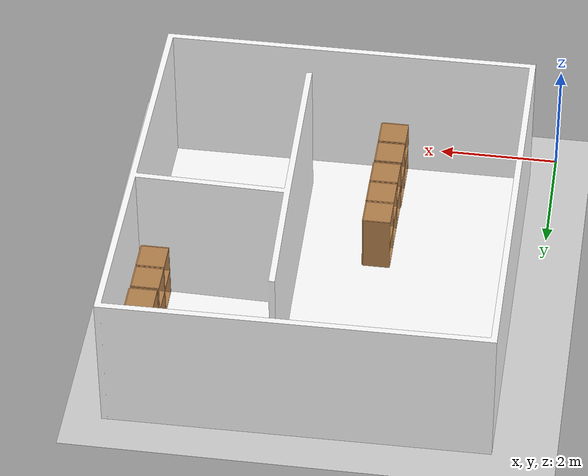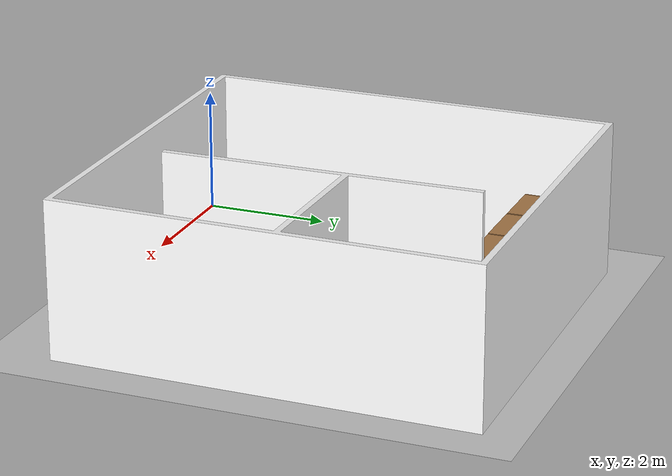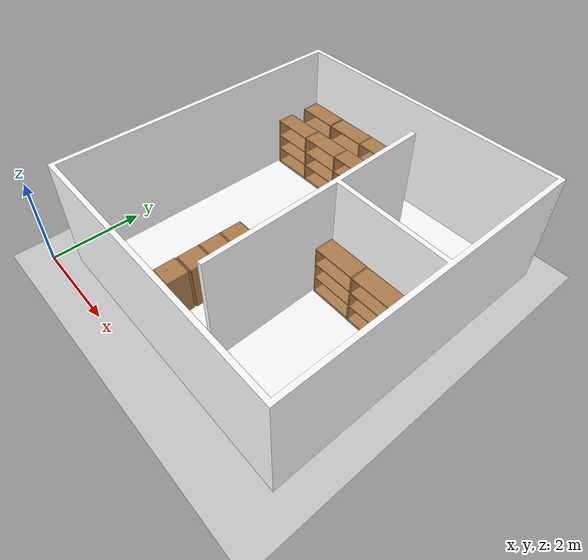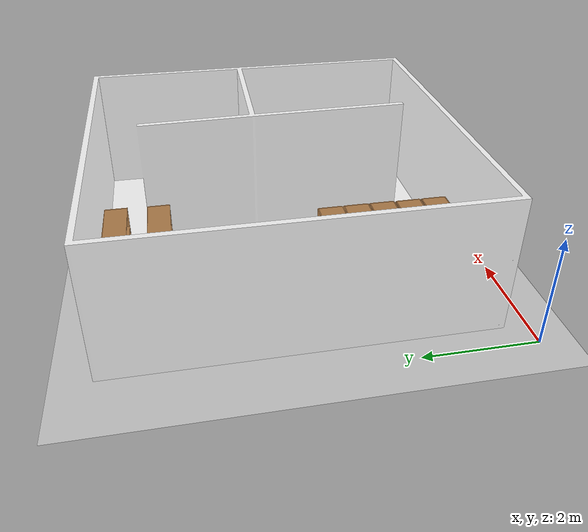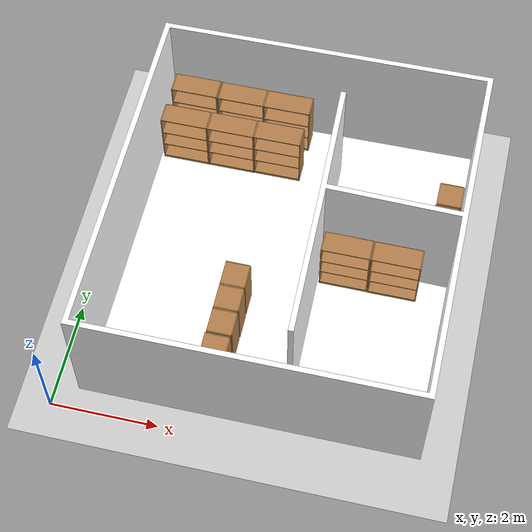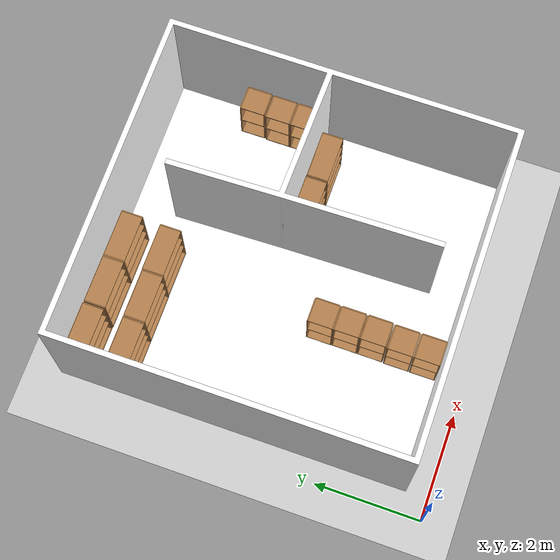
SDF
<sdf version="1.7">
 <world name="default">
  <light name="sun" type="directional">
   <pose>0 0 10 0 -0 0</pose>
   <diffuse>0.8 0.8 0.8 1</diffuse>
   <specular>0.2 0.2 0.2 1</specular>
   <attenuation>
    <range>1000</range>
    <constant>0.9</constant>
    <linear>0.01</linear>
    <quadratic>0.001</quadratic>
   </attenuation>
   <direction>-0.5 0.1 -0.9</direction>
   <spot><inner_angle>0</inner_angle><outer_angle>0</outer_angle><falloff>0</falloff></spot>
  </light>
  <model name="ground_plane">
   <static>1</static>
   <link name="link">
    <collision name="collision">
     <geometry><plane><normal>0 0 1</normal><size>100 100</size></plane></geometry>
     <surface><friction><ode><mu>100</mu><mu2>50</mu2></ode></friction></surface>
    </collision>
    <visual name="visual">
     <cast_shadows>0</cast_shadows>
     <geometry><plane><normal>0 0 1</normal><size>100 100</size></plane></geometry>
     <material>
      <script><uri>file://media/materials/scripts/gazebo.material</uri><name>Gazebo/Grey</name></script>
     </material>
    </visual>
   </link>
  </model>
  <gravity>0 0 -9.8</gravity>
  <magnetic_field>6e-06 2.3e-05 -4.2e-05</magnetic_field>
  <atmosphere type="adiabatic"/>
  <physics type="ode">
   <max_step_size>0.001</max_step_size>
   <real_time_factor>1</real_time_factor>
   <real_time_update_rate>1000</real_time_update_rate>
  </physics>
  <scene><ambient>0.4 0.4 0.4 1</ambient><background>0.7 0.7 0.7 1</background><shadows>1</shadows></scene>
  <audio><device>default</device></audio>
  <spherical_coordinates>
   <surface_model>EARTH_WGS84</surface_model>
   <latitude_deg>0</latitude_deg>
   <longitude_deg>0</longitude_deg>
   <elevation>0</elevation>
   <heading_deg>0</heading_deg>
  </spherical_coordinates>
  <model name="office_L1">
   <static>1</static>
   <link name="floor_1">
    <visual name="visual">
     <geometry><mesh><uri>model://office_L1/meshes/floor_1.obj</uri></mesh></geometry>
     <material>
      <diffuse>1 1 1 1</diffuse>
      <specular>0.1 0.1 0.1 1</specular>
      <pbr>
       <metal><metalness>0.0</metalness><albedo_map>model://office_L1/meshes/blue_linoleum.png</albedo_map></metal>
      </pbr>
      <script><uri>model://office_L1/meshes/</uri><name>floor_1_Diffuse</name></script>
     </material>
    </visual>
    <collision name="collision">
     <geometry><mesh><uri>model://office_L1/meshes/floor_1.obj</uri></mesh></geometry>
     <surface><contact><collide_bitmask>1</collide_bitmask></contact></surface>
    </collision>
   </link>
   <link name="wall_1">
    <visual name="wall_1">
     <geometry><mesh><uri>model://office_L1/meshes/wall_1.obj</uri></mesh></geometry>
     <material>
      <diffuse>1 1 1 1</diffuse>
      <specular>0.1 0.1 0.1 1</specular>
      <pbr>
       <metal><metalness>0.0</metalness><albedo_map>model://office_L1/meshes/default.png</albedo_map></metal>
      </pbr>
      <script><uri>model://office_L1/meshes/</uri><name>wall_1_Diffuse</name></script>
     </material>
    </visual>
    <collision name="collision">
     <geometry><mesh><uri>model://office_L1/meshes/wall_1.obj</uri></mesh></geometry>
     <surface><contact><collide_bitmask>1</collide_bitmask></contact></surface>
    </collision>
    <pose>15.6319 -9.69345 0 0 -0 0</pose>
   </link>
   <pose>-15.2186 10.1056 0 0 -0 0</pose>
  </model>
  <model name="cabinet">
   <static>1</static>
   <link name="cabinet_bottom_plate">
    <inertial>
     <pose>0 0 -1 0 -0 0</pose>
     <inertia><ixx>2.05</ixx><ixy>0</ixy><ixz>0</ixz><iyy>2.05</iyy><iyz>0</iyz><izz>2.05</izz></inertia>
     <mass>25</mass>
    </inertial>
    <collision name="cabinet_bottom_plate_geom">
     <pose>0 0 0.01 0 -0 0</pose>
     <geometry><box><size>0.45 0.45 0.02</size></box></geometry>
    </collision>
    <visual name="cabinet_bottom_plate_geom_visual">
     <pose>0 0 0.01 0 -0 0</pose>
     <geometry><box><size>0.45 0.45 0.02</size></box></geometry>
     <material>
      <script><uri>file://media/materials/scripts/gazebo.material</uri><name>Gazebo/Wood</name></script>
     </material>
    </visual>
    <collision name="cabinet_bottom_plate_geom_cabinet_back_plate">
     <pose>0.235 0 0.51 0 -0 0</pose>
     <geometry><box><size>0.02 0.45 1.02</size></box></geometry>
    </collision>
    <visual name="cabinet_bottom_plate_geom_cabinet_back_plate_visual">
     <pose>0.235 0 0.51 0 -0 0</pose>
     <geometry><box><size>0.02 0.45 1.02</size></box></geometry>
     <material>
      <script><uri>file://media/materials/scripts/gazebo.material</uri><name>Gazebo/Wood</name></script>
     </material>
    </visual>
    <collision name="cabinet_bottom_plate_geom_cabinet_left_plate">
     <pose>0 0.235 0.51 0 -0 0</pose>
     <geometry><box><size>0.45 0.02 1.02</size></box></geometry>
    </collision>
    <visual name="cabinet_bottom_plate_geom_cabinet_left_plate_visual">
     <pose>0 0.235 0.51 0 -0 0</pose>
     <geometry><box><size>0.45 0.02 1.02</size></box></geometry>
     <material>
      <script><uri>file://media/materials/scripts/gazebo.material</uri><name>Gazebo/Wood</name></script>
     </material>
    </visual>
    <collision name="cabinet_bottom_plate_geom_cabinet_middle_plate">
     <pose>0 0 0.51 0 -0 0</pose>
     <geometry><box><size>0.45 0.45 0.02</size></box></geometry>
    </collision>
    <visual name="cabinet_bottom_plate_geom_cabinet_middle_plate_visual">
     <pose>0 0 0.51 0 -0 0</pose>
     <geometry><box><size>0.45 0.45 0.02</size></box></geometry>
     <material>
      <script><uri>file://media/materials/scripts/gazebo.material</uri><name>Gazebo/Wood</name></script>
     </material>
    </visual>
    <collision name="cabinet_bottom_plate_geom_cabinet_right_plate">
     <pose>0 -0.235 0.51 0 -0 0</pose>
     <geometry><box><size>0.45 0.02 1.02</size></box></geometry>
    </collision>
    <visual name="cabinet_bottom_plate_geom_cabinet_right_plate_visual">
     <pose>0 -0.235 0.51 0 -0 0</pose>
     <geometry><box><size>0.45 0.02 1.02</size></box></geometry>
     <material>
      <script><uri>file://media/materials/scripts/gazebo.material</uri><name>Gazebo/Wood</name></script>
     </material>
    </visual>
    <collision name="cabinet_bottom_plate_geom_cabinet_top_plate">
     <pose>0 0 1.01 0 -0 0</pose>
     <geometry><box><size>0.45 0.45 0.02</size></box></geometry>
    </collision>
    <visual name="cabinet_bottom_plate_geom_cabinet_top_plate_visual">
     <pose>0 0 1.01 0 -0 0</pose>
     <geometry><box><size>0.45 0.45 0.02</size></box></geometry>
     <material>
      <script><uri>file://media/materials/scripts/gazebo.material</uri><name>Gazebo/Wood</name></script>
     </material>
    </visual>
   </link>
   <pose>2.75847 2.77242 0 0 -0 0</pose>
  </model>
  <model name="cabinet_0">
   <static>1</static>
   <link name="cabinet_bottom_plate">
    <inertial>
     <pose>0 0 -1 0 -0 0</pose>
     <inertia><ixx>2.05</ixx><ixy>0</ixy><ixz>0</ixz><iyy>2.05</iyy><iyz>0</iyz><izz>2.05</izz></inertia>
     <mass>25</mass>
    </inertial>
    <collision name="cabinet_bottom_plate_geom">
     <pose>0 0 0.01 0 -0 0</pose>
     <geometry><box><size>0.45 0.45 0.02</size></box></geometry>
    </collision>
    <visual name="cabinet_bottom_plate_geom_visual">
     <pose>0 0 0.01 0 -0 0</pose>
     <geometry><box><size>0.45 0.45 0.02</size></box></geometry>
     <material>
      <script><uri>file://media/materials/scripts/gazebo.material</uri><name>Gazebo/Wood</name></script>
     </material>
    </visual>
    <collision name="cabinet_bottom_plate_geom_cabinet_back_plate">
     <pose>0.235 0 0.51 0 -0 0</pose>
     <geometry><box><size>0.02 0.45 1.02</size></box></geometry>
    </collision>
    <visual name="cabinet_bottom_plate_geom_cabinet_back_plate_visual">
     <pose>0.235 0 0.51 0 -0 0</pose>
     <geometry><box><size>0.02 0.45 1.02</size></box></geometry>
     <material>
      <script><uri>file://media/materials/scripts/gazebo.material</uri><name>Gazebo/Wood</name></script>
     </material>
    </visual>
    <collision name="cabinet_bottom_plate_geom_cabinet_left_plate">
     <pose>0 0.235 0.51 0 -0 0</pose>
     <geometry><box><size>0.45 0.02 1.02</size></box></geometry>
    </collision>
    <visual name="cabinet_bottom_plate_geom_cabinet_left_plate_visual">
     <pose>0 0.235 0.51 0 -0 0</pose>
     <geometry><box><size>0.45 0.02 1.02</size></box></geometry>
     <material>
      <script><uri>file://media/materials/scripts/gazebo.material</uri><name>Gazebo/Wood</name></script>
     </material>
    </visual>
    <collision name="cabinet_bottom_plate_geom_cabinet_middle_plate">
     <pose>0 0 0.51 0 -0 0</pose>
     <geometry><box><size>0.45 0.45 0.02</size></box></geometry>
    </collision>
    <visual name="cabinet_bottom_plate_geom_cabinet_middle_plate_visual">
     <pose>0 0 0.51 0 -0 0</pose>
     <geometry><box><size>0.45 0.45 0.02</size></box></geometry>
     <material>
      <script><uri>file://media/materials/scripts/gazebo.material</uri><name>Gazebo/Wood</name></script>
     </material>
    </visual>
    <collision name="cabinet_bottom_plate_geom_cabinet_right_plate">
     <pose>0 -0.235 0.51 0 -0 0</pose>
     <geometry><box><size>0.45 0.02 1.02</size></box></geometry>
    </collision>
    <visual name="cabinet_bottom_plate_geom_cabinet_right_plate_visual">
     <pose>0 -0.235 0.51 0 -0 0</pose>
     <geometry><box><size>0.45 0.02 1.02</size></box></geometry>
     <material>
      <script><uri>file://media/materials/scripts/gazebo.material</uri><name>Gazebo/Wood</name></script>
     </material>
    </visual>
    <collision name="cabinet_bottom_plate_geom_cabinet_top_plate">
     <pose>0 0 1.01 0 -0 0</pose>
     <geometry><box><size>0.45 0.45 0.02</size></box></geometry>
    </collision>
    <visual name="cabinet_bottom_plate_geom_cabinet_top_plate_visual">
     <pose>0 0 1.01 0 -0 0</pose>
     <geometry><box><size>0.45 0.45 0.02</size></box></geometry>
     <material>
      <script><uri>file://media/materials/scripts/gazebo.material</uri><name>Gazebo/Wood</name></script>
     </material>
    </visual>
   </link>
   <pose>2.76026 2.27952 0 0 -0 0</pose>
  </model>
  <model name="cabinet_1">
   <static>1</static>
   <link name="cabinet_bottom_plate">
    <inertial>
     <pose>0 0 -1 0 -0 0</pose>
     <inertia><ixx>2.05</ixx><ixy>0</ixy><ixz>0</ixz><iyy>2.05</iyy><iyz>0</iyz><izz>2.05</izz></inertia>
     <mass>25</mass>
    </inertial>
    <collision name="cabinet_bottom_plate_geom">
     <pose>0 0 0.01 0 -0 0</pose>
     <geometry><box><size>0.45 0.45 0.02</size></box></geometry>
    </collision>
    <visual name="cabinet_bottom_plate_geom_visual">
     <pose>0 0 0.01 0 -0 0</pose>
     <geometry><box><size>0.45 0.45 0.02</size></box></geometry>
     <material>
      <script><uri>file://media/materials/scripts/gazebo.material</uri><name>Gazebo/Wood</name></script>
     </material>
    </visual>
    <collision name="cabinet_bottom_plate_geom_cabinet_back_plate">
     <pose>0.235 0 0.51 0 -0 0</pose>
     <geometry><box><size>0.02 0.45 1.02</size></box></geometry>
    </collision>
    <visual name="cabinet_bottom_plate_geom_cabinet_back_plate_visual">
     <pose>0.235 0 0.51 0 -0 0</pose>
     <geometry><box><size>0.02 0.45 1.02</size></box></geometry>
     <material>
      <script><uri>file://media/materials/scripts/gazebo.material</uri><name>Gazebo/Wood</name></script>
     </material>
    </visual>
    <collision name="cabinet_bottom_plate_geom_cabinet_left_plate">
     <pose>0 0.235 0.51 0 -0 0</pose>
     <geometry><box><size>0.45 0.02 1.02</size></box></geometry>
    </collision>
    <visual name="cabinet_bottom_plate_geom_cabinet_left_plate_visual">
     <pose>0 0.235 0.51 0 -0 0</pose>
     <geometry><box><size>0.45 0.02 1.02</size></box></geometry>
     <material>
      <script><uri>file://media/materials/scripts/gazebo.material</uri><name>Gazebo/Wood</name></script>
     </material>
    </visual>
    <collision name="cabinet_bottom_plate_geom_cabinet_middle_plate">
     <pose>0 0 0.51 0 -0 0</pose>
     <geometry><box><size>0.45 0.45 0.02</size></box></geometry>
    </collision>
    <visual name="cabinet_bottom_plate_geom_cabinet_middle_plate_visual">
     <pose>0 0 0.51 0 -0 0</pose>
     <geometry><box><size>0.45 0.45 0.02</size></box></geometry>
     <material>
      <script><uri>file://media/materials/scripts/gazebo.material</uri><name>Gazebo/Wood</name></script>
     </material>
    </visual>
    <collision name="cabinet_bottom_plate_geom_cabinet_right_plate">
     <pose>0 -0.235 0.51 0 -0 0</pose>
     <geometry><box><size>0.45 0.02 1.02</size></box></geometry>
    </collision>
    <visual name="cabinet_bottom_plate_geom_cabinet_right_plate_visual">
     <pose>0 -0.235 0.51 0 -0 0</pose>
     <geometry><box><size>0.45 0.02 1.02</size></box></geometry>
     <material>
      <script><uri>file://media/materials/scripts/gazebo.material</uri><name>Gazebo/Wood</name></script>
     </material>
    </visual>
    <collision name="cabinet_bottom_plate_geom_cabinet_top_plate">
     <pose>0 0 1.01 0 -0 0</pose>
     <geometry><box><size>0.45 0.45 0.02</size></box></geometry>
    </collision>
    <visual name="cabinet_bottom_plate_geom_cabinet_top_plate_visual">
     <pose>0 0 1.01 0 -0 0</pose>
     <geometry><box><size>0.45 0.45 0.02</size></box></geometry>
     <material>
      <script><uri>file://media/materials/scripts/gazebo.material</uri><name>Gazebo/Wood</name></script>
     </material>
    </visual>
   </link>
   <pose>2.7446 0.774484 0 0 -0 0</pose>
  </model>
  <model name="cabinet_3">
   <static>1</static>
   <link name="cabinet_bottom_plate">
    <inertial>
     <pose>0 0 -1 0 -0 0</pose>
     <inertia><ixx>2.05</ixx><ixy>0</ixy><ixz>0</ixz><iyy>2.05</iyy><iyz>0</iyz><izz>2.05</izz></inertia>
     <mass>25</mass>
    </inertial>
    <collision name="cabinet_bottom_plate_geom">
     <pose>0 0 0.01 0 -0 0</pose>
     <geometry><box><size>0.45 0.45 0.02</size></box></geometry>
    </collision>
    <visual name="cabinet_bottom_plate_geom_visual">
     <pose>0 0 0.01 0 -0 0</pose>
     <geometry><box><size>0.45 0.45 0.02</size></box></geometry>
     <material>
      <script><uri>file://media/materials/scripts/gazebo.material</uri><name>Gazebo/Wood</name></script>
     </material>
    </visual>
    <collision name="cabinet_bottom_plate_geom_cabinet_back_plate">
     <pose>0.235 0 0.51 0 -0 0</pose>
     <geometry><box><size>0.02 0.45 1.02</size></box></geometry>
    </collision>
    <visual name="cabinet_bottom_plate_geom_cabinet_back_plate_visual">
     <pose>0.235 0 0.51 0 -0 0</pose>
     <geometry><box><size>0.02 0.45 1.02</size></box></geometry>
     <material>
      <script><uri>file://media/materials/scripts/gazebo.material</uri><name>Gazebo/Wood</name></script>
     </material>
    </visual>
    <collision name="cabinet_bottom_plate_geom_cabinet_left_plate">
     <pose>0 0.235 0.51 0 -0 0</pose>
     <geometry><box><size>0.45 0.02 1.02</size></box></geometry>
    </collision>
    <visual name="cabinet_bottom_plate_geom_cabinet_left_plate_visual">
     <pose>0 0.235 0.51 0 -0 0</pose>
     <geometry><box><size>0.45 0.02 1.02</size></box></geometry>
     <material>
      <script><uri>file://media/materials/scripts/gazebo.material</uri><name>Gazebo/Wood</name></script>
     </material>
    </visual>
    <collision name="cabinet_bottom_plate_geom_cabinet_middle_plate">
     <pose>0 0 0.51 0 -0 0</pose>
     <geometry><box><size>0.45 0.45 0.02</size></box></geometry>
    </collision>
    <visual name="cabinet_bottom_plate_geom_cabinet_middle_plate_visual">
     <pose>0 0 0.51 0 -0 0</pose>
     <geometry><box><size>0.45 0.45 0.02</size></box></geometry>
     <material>
      <script><uri>file://media/materials/scripts/gazebo.material</uri><name>Gazebo/Wood</name></script>
     </material>
    </visual>
    <collision name="cabinet_bottom_plate_geom_cabinet_right_plate">
     <pose>0 -0.235 0.51 0 -0 0</pose>
     <geometry><box><size>0.45 0.02 1.02</size></box></geometry>
    </collision>
    <visual name="cabinet_bottom_plate_geom_cabinet_right_plate_visual">
     <pose>0 -0.235 0.51 0 -0 0</pose>
     <geometry><box><size>0.45 0.02 1.02</size></box></geometry>
     <material>
      <script><uri>file://media/materials/scripts/gazebo.material</uri><name>Gazebo/Wood</name></script>
     </material>
    </visual>
    <collision name="cabinet_bottom_plate_geom_cabinet_top_plate">
     <pose>0 0 1.01 0 -0 0</pose>
     <geometry><box><size>0.45 0.45 0.02</size></box></geometry>
    </collision>
    <visual name="cabinet_bottom_plate_geom_cabinet_top_plate_visual">
     <pose>0 0 1.01 0 -0 0</pose>
     <geometry><box><size>0.45 0.45 0.02</size></box></geometry>
     <material>
      <script><uri>file://media/materials/scripts/gazebo.material</uri><name>Gazebo/Wood</name></script>
     </material>
    </visual>
   </link>
   <pose>2.75869 1.78212 0 0 -0 0</pose>
  </model>
  <model name="cabinet_4">
   <static>1</static>
   <link name="cabinet_bottom_plate">
    <inertial>
     <pose>0 0 -1 0 -0 0</pose>
     <inertia><ixx>2.05</ixx><ixy>0</ixy><ixz>0</ixz><iyy>2.05</iyy><iyz>0</iyz><izz>2.05</izz></inertia>
     <mass>25</mass>
    </inertial>
    <collision name="cabinet_bottom_plate_geom">
     <pose>0 0 0.01 0 -0 0</pose>
     <geometry><box><size>0.45 0.45 0.02</size></box></geometry>
    </collision>
    <visual name="cabinet_bottom_plate_geom_visual">
     <pose>0 0 0.01 0 -0 0</pose>
     <geometry><box><size>0.45 0.45 0.02</size></box></geometry>
     <material>
      <script><uri>file://media/materials/scripts/gazebo.material</uri><name>Gazebo/Wood</name></script>
     </material>
    </visual>
    <collision name="cabinet_bottom_plate_geom_cabinet_back_plate">
     <pose>0.235 0 0.51 0 -0 0</pose>
     <geometry><box><size>0.02 0.45 1.02</size></box></geometry>
    </collision>
    <visual name="cabinet_bottom_plate_geom_cabinet_back_plate_visual">
     <pose>0.235 0 0.51 0 -0 0</pose>
     <geometry><box><size>0.02 0.45 1.02</size></box></geometry>
     <material>
      <script><uri>file://media/materials/scripts/gazebo.material</uri><name>Gazebo/Wood</name></script>
     </material>
    </visual>
    <collision name="cabinet_bottom_plate_geom_cabinet_left_plate">
     <pose>0 0.235 0.51 0 -0 0</pose>
     <geometry><box><size>0.45 0.02 1.02</size></box></geometry>
    </collision>
    <visual name="cabinet_bottom_plate_geom_cabinet_left_plate_visual">
     <pose>0 0.235 0.51 0 -0 0</pose>
     <geometry><box><size>0.45 0.02 1.02</size></box></geometry>
     <material>
      <script><uri>file://media/materials/scripts/gazebo.material</uri><name>Gazebo/Wood</name></script>
     </material>
    </visual>
    <collision name="cabinet_bottom_plate_geom_cabinet_middle_plate">
     <pose>0 0 0.51 0 -0 0</pose>
     <geometry><box><size>0.45 0.45 0.02</size></box></geometry>
    </collision>
    <visual name="cabinet_bottom_plate_geom_cabinet_middle_plate_visual">
     <pose>0 0 0.51 0 -0 0</pose>
     <geometry><box><size>0.45 0.45 0.02</size></box></geometry>
     <material>
      <script><uri>file://media/materials/scripts/gazebo.material</uri><name>Gazebo/Wood</name></script>
     </material>
    </visual>
    <collision name="cabinet_bottom_plate_geom_cabinet_right_plate">
     <pose>0 -0.235 0.51 0 -0 0</pose>
     <geometry><box><size>0.45 0.02 1.02</size></box></geometry>
    </collision>
    <visual name="cabinet_bottom_plate_geom_cabinet_right_plate_visual">
     <pose>0 -0.235 0.51 0 -0 0</pose>
     <geometry><box><size>0.45 0.02 1.02</size></box></geometry>
     <material>
      <script><uri>file://media/materials/scripts/gazebo.material</uri><name>Gazebo/Wood</name></script>
     </material>
    </visual>
    <collision name="cabinet_bottom_plate_geom_cabinet_top_plate">
     <pose>0 0 1.01 0 -0 0</pose>
     <geometry><box><size>0.45 0.45 0.02</size></box></geometry>
    </collision>
    <visual name="cabinet_bottom_plate_geom_cabinet_top_plate_visual">
     <pose>0 0 1.01 0 -0 0</pose>
     <geometry><box><size>0.45 0.45 0.02</size></box></geometry>
     <material>
      <script><uri>file://media/materials/scripts/gazebo.material</uri><name>Gazebo/Wood</name></script>
     </material>
    </visual>
   </link>
   <pose>2.74565 1.27427 0 0 -0 0</pose>
  </model>
  <model name="bookshelf">
   <static>1</static>
   <link name="link">
    <inertial><mass>1</mass></inertial>
    <collision name="back">
     <pose>0 0.005 0.6 0 -0 0</pose>
     <geometry><box><size>0.9 0.01 1.2</size></box></geometry>
    </collision>
    <visual name="visual1">
     <pose>0 0.005 0.6 0 -0 0</pose>
     <geometry><box><size>0.9 0.01 1.2</size></box></geometry>
     <material>
      <script><uri>file://media/materials/scripts/gazebo.material</uri><name>Gazebo/Wood</name></script>
     </material>
    </visual>
    <collision name="left_side">
     <pose>0.45 -0.195 0.6 0 -0 0</pose>
     <geometry><box><size>0.02 0.4 1.2</size></box></geometry>
    </collision>
    <visual name="visual2">
     <pose>0.45 -0.195 0.6 0 -0 0</pose>
     <geometry><box><size>0.02 0.4 1.2</size></box></geometry>
     <material>
      <script><uri>file://media/materials/scripts/gazebo.material</uri><name>Gazebo/Wood</name></script>
     </material>
    </visual>
    <collision name="right_side">
     <pose>-0.45 -0.195 0.6 0 -0 0</pose>
     <geometry><box><size>0.02 0.4 1.2</size></box></geometry>
    </collision>
    <visual name="visual3">
     <pose>-0.45 -0.195 0.6 0 -0 0</pose>
     <geometry><box><size>0.02 0.4 1.2</size></box></geometry>
     <material>
      <script><uri>file://media/materials/scripts/gazebo.material</uri><name>Gazebo/Wood</name></script>
     </material>
    </visual>
    <collision name="bottom">
     <pose>0 -0.195 0.03 0 -0 0</pose>
     <geometry><box><size>0.88 0.4 0.06</size></box></geometry>
    </collision>
    <visual name="visual4">
     <pose>0 -0.195 0.03 0 -0 0</pose>
     <geometry><box><size>0.88 0.4 0.06</size></box></geometry>
     <material>
      <script><uri>file://media/materials/scripts/gazebo.material</uri><name>Gazebo/Wood</name></script>
     </material>
    </visual>
    <collision name="top">
     <pose>0 -0.195 1.19 0 -0 0</pose>
     <geometry><box><size>0.88 0.4 0.02</size></box></geometry>
    </collision>
    <visual name="visual5">
     <pose>0 -0.195 1.19 0 -0 0</pose>
     <geometry><box><size>0.88 0.4 0.02</size></box></geometry>
     <material>
      <script><uri>file://media/materials/scripts/gazebo.material</uri><name>Gazebo/Wood</name></script>
     </material>
    </visual>
    <collision name="low_shelf">
     <pose>0 -0.195 0.43 0 -0 0</pose>
     <geometry><box><size>0.88 0.4 0.02</size></box></geometry>
    </collision>
    <visual name="visual6">
     <pose>0 -0.195 0.43 0 -0 0</pose>
     <geometry><box><size>0.88 0.4 0.02</size></box></geometry>
     <material>
      <script><uri>file://media/materials/scripts/gazebo.material</uri><name>Gazebo/Wood</name></script>
     </material>
    </visual>
    <collision name="high_shelf">
     <pose>0 -0.195 0.8 0 -0 0</pose>
     <geometry><box><size>0.88 0.4 0.02</size></box></geometry>
    </collision>
    <visual name="visual7">
     <pose>0 -0.195 0.8 0 -0 0</pose>
     <geometry><box><size>0.88 0.4 0.02</size></box></geometry>
     <material>
      <script><uri>file://media/materials/scripts/gazebo.material</uri><name>Gazebo/Wood</name></script>
     </material>
    </visual>
   </link>
   <pose>1.03795 6.85419 0 0 -0 0</pose>
  </model>
  <model name="bookshelf_0">
   <static>1</static>
   <link name="link">
    <inertial><mass>1</mass></inertial>
    <collision name="back">
     <pose>0 0.005 0.6 0 -0 0</pose>
     <geometry><box><size>0.9 0.01 1.2</size></box></geometry>
    </collision>
    <visual name="visual1">
     <pose>0 0.005 0.6 0 -0 0</pose>
     <geometry><box><size>0.9 0.01 1.2</size></box></geometry>
     <material>
      <script><uri>file://media/materials/scripts/gazebo.material</uri><name>Gazebo/Wood</name></script>
     </material>
    </visual>
    <collision name="left_side">
     <pose>0.45 -0.195 0.6 0 -0 0</pose>
     <geometry><box><size>0.02 0.4 1.2</size></box></geometry>
    </collision>
    <visual name="visual2">
     <pose>0.45 -0.195 0.6 0 -0 0</pose>
     <geometry><box><size>0.02 0.4 1.2</size></box></geometry>
     <material>
      <script><uri>file://media/materials/scripts/gazebo.material</uri><name>Gazebo/Wood</name></script>
     </material>
    </visual>
    <collision name="right_side">
     <pose>-0.45 -0.195 0.6 0 -0 0</pose>
     <geometry><box><size>0.02 0.4 1.2</size></box></geometry>
    </collision>
    <visual name="visual3">
     <pose>-0.45 -0.195 0.6 0 -0 0</pose>
     <geometry><box><size>0.02 0.4 1.2</size></box></geometry>
     <material>
      <script><uri>file://media/materials/scripts/gazebo.material</uri><name>Gazebo/Wood</name></script>
     </material>
    </visual>
    <collision name="bottom">
     <pose>0 -0.195 0.03 0 -0 0</pose>
     <geometry><box><size>0.88 0.4 0.06</size></box></geometry>
    </collision>
    <visual name="visual4">
     <pose>0 -0.195 0.03 0 -0 0</pose>
     <geometry><box><size>0.88 0.4 0.06</size></box></geometry>
     <material>
      <script><uri>file://media/materials/scripts/gazebo.material</uri><name>Gazebo/Wood</name></script>
     </material>
    </visual>
    <collision name="top">
     <pose>0 -0.195 1.19 0 -0 0</pose>
     <geometry><box><size>0.88 0.4 0.02</size></box></geometry>
    </collision>
    <visual name="visual5">
     <pose>0 -0.195 1.19 0 -0 0</pose>
     <geometry><box><size>0.88 0.4 0.02</size></box></geometry>
     <material>
      <script><uri>file://media/materials/scripts/gazebo.material</uri><name>Gazebo/Wood</name></script>
     </material>
    </visual>
    <collision name="low_shelf">
     <pose>0 -0.195 0.43 0 -0 0</pose>
     <geometry><box><size>0.88 0.4 0.02</size></box></geometry>
    </collision>
    <visual name="visual6">
     <pose>0 -0.195 0.43 0 -0 0</pose>
     <geometry><box><size>0.88 0.4 0.02</size></box></geometry>
     <material>
      <script><uri>file://media/materials/scripts/gazebo.material</uri><name>Gazebo/Wood</name></script>
     </material>
    </visual>
    <collision name="high_shelf">
     <pose>0 -0.195 0.8 0 -0 0</pose>
     <geometry><box><size>0.88 0.4 0.02</size></box></geometry>
    </collision>
    <visual name="visual7">
     <pose>0 -0.195 0.8 0 -0 0</pose>
     <geometry><box><size>0.88 0.4 0.02</size></box></geometry>
     <material>
      <script><uri>file://media/materials/scripts/gazebo.material</uri><name>Gazebo/Wood</name></script>
     </material>
    </visual>
   </link>
   <pose>1.97423 6.84551 0 0 -0 0</pose>
  </model>
  <model name="bookshelf_1">
   <static>1</static>
   <link name="link">
    <inertial><mass>1</mass></inertial>
    <collision name="back">
     <pose>0 0.005 0.6 0 -0 0</pose>
     <geometry><box><size>0.9 0.01 1.2</size></box></geometry>
    </collision>
    <visual name="visual1">
     <pose>0 0.005 0.6 0 -0 0</pose>
     <geometry><box><size>0.9 0.01 1.2</size></box></geometry>
     <material>
      <script><uri>file://media/materials/scripts/gazebo.material</uri><name>Gazebo/Wood</name></script>
     </material>
    </visual>
    <collision name="left_side">
     <pose>0.45 -0.195 0.6 0 -0 0</pose>
     <geometry><box><size>0.02 0.4 1.2</size></box></geometry>
    </collision>
    <visual name="visual2">
     <pose>0.45 -0.195 0.6 0 -0 0</pose>
     <geometry><box><size>0.02 0.4 1.2</size></box></geometry>
     <material>
      <script><uri>file://media/materials/scripts/gazebo.material</uri><name>Gazebo/Wood</name></script>
     </material>
    </visual>
    <collision name="right_side">
     <pose>-0.45 -0.195 0.6 0 -0 0</pose>
     <geometry><box><size>0.02 0.4 1.2</size></box></geometry>
    </collision>
    <visual name="visual3">
     <pose>-0.45 -0.195 0.6 0 -0 0</pose>
     <geometry><box><size>0.02 0.4 1.2</size></box></geometry>
     <material>
      <script><uri>file://media/materials/scripts/gazebo.material</uri><name>Gazebo/Wood</name></script>
     </material>
    </visual>
    <collision name="bottom">
     <pose>0 -0.195 0.03 0 -0 0</pose>
     <geometry><box><size>0.88 0.4 0.06</size></box></geometry>
    </collision>
    <visual name="visual4">
     <pose>0 -0.195 0.03 0 -0 0</pose>
     <geometry><box><size>0.88 0.4 0.06</size></box></geometry>
     <material>
      <script><uri>file://media/materials/scripts/gazebo.material</uri><name>Gazebo/Wood</name></script>
     </material>
    </visual>
    <collision name="top">
     <pose>0 -0.195 1.19 0 -0 0</pose>
     <geometry><box><size>0.88 0.4 0.02</size></box></geometry>
    </collision>
    <visual name="visual5">
     <pose>0 -0.195 1.19 0 -0 0</pose>
     <geometry><box><size>0.88 0.4 0.02</size></box></geometry>
     <material>
      <script><uri>file://media/materials/scripts/gazebo.material</uri><name>Gazebo/Wood</name></script>
     </material>
    </visual>
    <collision name="low_shelf">
     <pose>0 -0.195 0.43 0 -0 0</pose>
     <geometry><box><size>0.88 0.4 0.02</size></box></geometry>
    </collision>
    <visual name="visual6">
     <pose>0 -0.195 0.43 0 -0 0</pose>
     <geometry><box><size>0.88 0.4 0.02</size></box></geometry>
     <material>
      <script><uri>file://media/materials/scripts/gazebo.material</uri><name>Gazebo/Wood</name></script>
     </material>
    </visual>
    <collision name="high_shelf">
     <pose>0 -0.195 0.8 0 -0 0</pose>
     <geometry><box><size>0.88 0.4 0.02</size></box></geometry>
    </collision>
    <visual name="visual7">
     <pose>0 -0.195 0.8 0 -0 0</pose>
     <geometry><box><size>0.88 0.4 0.02</size></box></geometry>
     <material>
      <script><uri>file://media/materials/scripts/gazebo.material</uri><name>Gazebo/Wood</name></script>
     </material>
    </visual>
   </link>
   <pose>2.89322 6.84476 0 0 -0 0</pose>
  </model>
  <model name="bookshelf_2">
   <static>1</static>
   <link name="link">
    <inertial><mass>1</mass></inertial>
    <collision name="back">
     <pose>0 0.005 0.6 0 -0 0</pose>
     <geometry><box><size>0.9 0.01 1.2</size></box></geometry>
    </collision>
    <visual name="visual1">
     <pose>0 0.005 0.6 0 -0 0</pose>
     <geometry><box><size>0.9 0.01 1.2</size></box></geometry>
     <material>
      <script><uri>file://media/materials/scripts/gazebo.material</uri><name>Gazebo/Wood</name></script>
     </material>
    </visual>
    <collision name="left_side">
     <pose>0.45 -0.195 0.6 0 -0 0</pose>
     <geometry><box><size>0.02 0.4 1.2</size></box></geometry>
    </collision>
    <visual name="visual2">
     <pose>0.45 -0.195 0.6 0 -0 0</pose>
     <geometry><box><size>0.02 0.4 1.2</size></box></geometry>
     <material>
      <script><uri>file://media/materials/scripts/gazebo.material</uri><name>Gazebo/Wood</name></script>
     </material>
    </visual>
    <collision name="right_side">
     <pose>-0.45 -0.195 0.6 0 -0 0</pose>
     <geometry><box><size>0.02 0.4 1.2</size></box></geometry>
    </collision>
    <visual name="visual3">
     <pose>-0.45 -0.195 0.6 0 -0 0</pose>
     <geometry><box><size>0.02 0.4 1.2</size></box></geometry>
     <material>
      <script><uri>file://media/materials/scripts/gazebo.material</uri><name>Gazebo/Wood</name></script>
     </material>
    </visual>
    <collision name="bottom">
     <pose>0 -0.195 0.03 0 -0 0</pose>
     <geometry><box><size>0.88 0.4 0.06</size></box></geometry>
    </collision>
    <visual name="visual4">
     <pose>0 -0.195 0.03 0 -0 0</pose>
     <geometry><box><size>0.88 0.4 0.06</size></box></geometry>
     <material>
      <script><uri>file://media/materials/scripts/gazebo.material</uri><name>Gazebo/Wood</name></script>
     </material>
    </visual>
    <collision name="top">
     <pose>0 -0.195 1.19 0 -0 0</pose>
     <geometry><box><size>0.88 0.4 0.02</size></box></geometry>
    </collision>
    <visual name="visual5">
     <pose>0 -0.195 1.19 0 -0 0</pose>
     <geometry><box><size>0.88 0.4 0.02</size></box></geometry>
     <material>
      <script><uri>file://media/materials/scripts/gazebo.material</uri><name>Gazebo/Wood</name></script>
     </material>
    </visual>
    <collision name="low_shelf">
     <pose>0 -0.195 0.43 0 -0 0</pose>
     <geometry><box><size>0.88 0.4 0.02</size></box></geometry>
    </collision>
    <visual name="visual6">
     <pose>0 -0.195 0.43 0 -0 0</pose>
     <geometry><box><size>0.88 0.4 0.02</size></box></geometry>
     <material>
      <script><uri>file://media/materials/scripts/gazebo.material</uri><name>Gazebo/Wood</name></script>
     </material>
    </visual>
    <collision name="high_shelf">
     <pose>0 -0.195 0.8 0 -0 0</pose>
     <geometry><box><size>0.88 0.4 0.02</size></box></geometry>
    </collision>
    <visual name="visual7">
     <pose>0 -0.195 0.8 0 -0 0</pose>
     <geometry><box><size>0.88 0.4 0.02</size></box></geometry>
     <material>
      <script><uri>file://media/materials/scripts/gazebo.material</uri><name>Gazebo/Wood</name></script>
     </material>
    </visual>
   </link>
   <pose>1.03125 6.08371 0 0 -0 0</pose>
  </model>
  <model name="bookshelf_3">
   <static>1</static>
   <link name="link">
    <inertial><mass>1</mass></inertial>
    <collision name="back">
     <pose>0 0.005 0.6 0 -0 0</pose>
     <geometry><box><size>0.9 0.01 1.2</size></box></geometry>
    </collision>
    <visual name="visual1">
     <pose>0 0.005 0.6 0 -0 0</pose>
     <geometry><box><size>0.9 0.01 1.2</size></box></geometry>
     <material>
      <script><uri>file://media/materials/scripts/gazebo.material</uri><name>Gazebo/Wood</name></script>
     </material>
    </visual>
    <collision name="left_side">
     <pose>0.45 -0.195 0.6 0 -0 0</pose>
     <geometry><box><size>0.02 0.4 1.2</size></box></geometry>
    </collision>
    <visual name="visual2">
     <pose>0.45 -0.195 0.6 0 -0 0</pose>
     <geometry><box><size>0.02 0.4 1.2</size></box></geometry>
     <material>
      <script><uri>file://media/materials/scripts/gazebo.material</uri><name>Gazebo/Wood</name></script>
     </material>
    </visual>
    <collision name="right_side">
     <pose>-0.45 -0.195 0.6 0 -0 0</pose>
     <geometry><box><size>0.02 0.4 1.2</size></box></geometry>
    </collision>
    <visual name="visual3">
     <pose>-0.45 -0.195 0.6 0 -0 0</pose>
     <geometry><box><size>0.02 0.4 1.2</size></box></geometry>
     <material>
      <script><uri>file://media/materials/scripts/gazebo.material</uri><name>Gazebo/Wood</name></script>
     </material>
    </visual>
    <collision name="bottom">
     <pose>0 -0.195 0.03 0 -0 0</pose>
     <geometry><box><size>0.88 0.4 0.06</size></box></geometry>
    </collision>
    <visual name="visual4">
     <pose>0 -0.195 0.03 0 -0 0</pose>
     <geometry><box><size>0.88 0.4 0.06</size></box></geometry>
     <material>
      <script><uri>file://media/materials/scripts/gazebo.material</uri><name>Gazebo/Wood</name></script>
     </material>
    </visual>
    <collision name="top">
     <pose>0 -0.195 1.19 0 -0 0</pose>
     <geometry><box><size>0.88 0.4 0.02</size></box></geometry>
    </collision>
    <visual name="visual5">
     <pose>0 -0.195 1.19 0 -0 0</pose>
     <geometry><box><size>0.88 0.4 0.02</size></box></geometry>
     <material>
      <script><uri>file://media/materials/scripts/gazebo.material</uri><name>Gazebo/Wood</name></script>
     </material>
    </visual>
    <collision name="low_shelf">
     <pose>0 -0.195 0.43 0 -0 0</pose>
     <geometry><box><size>0.88 0.4 0.02</size></box></geometry>
    </collision>
    <visual name="visual6">
     <pose>0 -0.195 0.43 0 -0 0</pose>
     <geometry><box><size>0.88 0.4 0.02</size></box></geometry>
     <material>
      <script><uri>file://media/materials/scripts/gazebo.material</uri><name>Gazebo/Wood</name></script>
     </material>
    </visual>
    <collision name="high_shelf">
     <pose>0 -0.195 0.8 0 -0 0</pose>
     <geometry><box><size>0.88 0.4 0.02</size></box></geometry>
    </collision>
    <visual name="visual7">
     <pose>0 -0.195 0.8 0 -0 0</pose>
     <geometry><box><size>0.88 0.4 0.02</size></box></geometry>
     <material>
      <script><uri>file://media/materials/scripts/gazebo.material</uri><name>Gazebo/Wood</name></script>
     </material>
    </visual>
   </link>
   <pose>1.95389 6.08371 0 0 -0 0</pose>
  </model>
  <model name="bookshelf_4">
   <static>1</static>
   <link name="link">
    <inertial><mass>1</mass></inertial>
    <collision name="back">
     <pose>0 0.005 0.6 0 -0 0</pose>
     <geometry><box><size>0.9 0.01 1.2</size></box></geometry>
    </collision>
    <visual name="visual1">
     <pose>0 0.005 0.6 0 -0 0</pose>
     <geometry><box><size>0.9 0.01 1.2</size></box></geometry>
     <material>
      <script><uri>file://media/materials/scripts/gazebo.material</uri><name>Gazebo/Wood</name></script>
     </material>
    </visual>
    <collision name="left_side">
     <pose>0.45 -0.195 0.6 0 -0 0</pose>
     <geometry><box><size>0.02 0.4 1.2</size></box></geometry>
    </collision>
    <visual name="visual2">
     <pose>0.45 -0.195 0.6 0 -0 0</pose>
     <geometry><box><size>0.02 0.4 1.2</size></box></geometry>
     <material>
      <script><uri>file://media/materials/scripts/gazebo.material</uri><name>Gazebo/Wood</name></script>
     </material>
    </visual>
    <collision name="right_side">
     <pose>-0.45 -0.195 0.6 0 -0 0</pose>
     <geometry><box><size>0.02 0.4 1.2</size></box></geometry>
    </collision>
    <visual name="visual3">
     <pose>-0.45 -0.195 0.6 0 -0 0</pose>
     <geometry><box><size>0.02 0.4 1.2</size></box></geometry>
     <material>
      <script><uri>file://media/materials/scripts/gazebo.material</uri><name>Gazebo/Wood</name></script>
     </material>
    </visual>
    <collision name="bottom">
     <pose>0 -0.195 0.03 0 -0 0</pose>
     <geometry><box><size>0.88 0.4 0.06</size></box></geometry>
    </collision>
    <visual name="visual4">
     <pose>0 -0.195 0.03 0 -0 0</pose>
     <geometry><box><size>0.88 0.4 0.06</size></box></geometry>
     <material>
      <script><uri>file://media/materials/scripts/gazebo.material</uri><name>Gazebo/Wood</name></script>
     </material>
    </visual>
    <collision name="top">
     <pose>0 -0.195 1.19 0 -0 0</pose>
     <geometry><box><size>0.88 0.4 0.02</size></box></geometry>
    </collision>
    <visual name="visual5">
     <pose>0 -0.195 1.19 0 -0 0</pose>
     <geometry><box><size>0.88 0.4 0.02</size></box></geometry>
     <material>
      <script><uri>file://media/materials/scripts/gazebo.material</uri><name>Gazebo/Wood</name></script>
     </material>
    </visual>
    <collision name="low_shelf">
     <pose>0 -0.195 0.43 0 -0 0</pose>
     <geometry><box><size>0.88 0.4 0.02</size></box></geometry>
    </collision>
    <visual name="visual6">
     <pose>0 -0.195 0.43 0 -0 0</pose>
     <geometry><box><size>0.88 0.4 0.02</size></box></geometry>
     <material>
      <script><uri>file://media/materials/scripts/gazebo.material</uri><name>Gazebo/Wood</name></script>
     </material>
    </visual>
    <collision name="high_shelf">
     <pose>0 -0.195 0.8 0 -0 0</pose>
     <geometry><box><size>0.88 0.4 0.02</size></box></geometry>
    </collision>
    <visual name="visual7">
     <pose>0 -0.195 0.8 0 -0 0</pose>
     <geometry><box><size>0.88 0.4 0.02</size></box></geometry>
     <material>
      <script><uri>file://media/materials/scripts/gazebo.material</uri><name>Gazebo/Wood</name></script>
     </material>
    </visual>
   </link>
   <pose>2.8702 6.09009 0 0 -0 0</pose>
  </model>
  <model name="cabinet_5">
   <static>1</static>
   <link name="cabinet_bottom_plate">
    <inertial>
     <pose>0 0 -1 0 -0 0</pose>
     <inertia><ixx>2.05</ixx><ixy>0</ixy><ixz>0</ixz><iyy>2.05</iyy><iyz>0</iyz><izz>2.05</izz></inertia>
     <mass>25</mass>
    </inertial>
    <collision name="cabinet_bottom_plate_geom">
     <pose>0 0 0.01 0 -0 0</pose>
     <geometry><box><size>0.45 0.45 0.02</size></box></geometry>
    </collision>
    <visual name="cabinet_bottom_plate_geom_visual">
     <pose>0 0 0.01 0 -0 0</pose>
     <geometry><box><size>0.45 0.45 0.02</size></box></geometry>
     <material>
      <script><uri>file://media/materials/scripts/gazebo.material</uri><name>Gazebo/Wood</name></script>
     </material>
    </visual>
    <collision name="cabinet_bottom_plate_geom_cabinet_back_plate">
     <pose>0.235 0 0.51 0 -0 0</pose>
     <geometry><box><size>0.02 0.45 1.02</size></box></geometry>
    </collision>
    <visual name="cabinet_bottom_plate_geom_cabinet_back_plate_visual">
     <pose>0.235 0 0.51 0 -0 0</pose>
     <geometry><box><size>0.02 0.45 1.02</size></box></geometry>
     <material>
      <script><uri>file://media/materials/scripts/gazebo.material</uri><name>Gazebo/Wood</name></script>
     </material>
    </visual>
    <collision name="cabinet_bottom_plate_geom_cabinet_left_plate">
     <pose>0 0.235 0.51 0 -0 0</pose>
     <geometry><box><size>0.45 0.02 1.02</size></box></geometry>
    </collision>
    <visual name="cabinet_bottom_plate_geom_cabinet_left_plate_visual">
     <pose>0 0.235 0.51 0 -0 0</pose>
     <geometry><box><size>0.45 0.02 1.02</size></box></geometry>
     <material>
      <script><uri>file://media/materials/scripts/gazebo.material</uri><name>Gazebo/Wood</name></script>
     </material>
    </visual>
    <collision name="cabinet_bottom_plate_geom_cabinet_middle_plate">
     <pose>0 0 0.51 0 -0 0</pose>
     <geometry><box><size>0.45 0.45 0.02</size></box></geometry>
    </collision>
    <visual name="cabinet_bottom_plate_geom_cabinet_middle_plate_visual">
     <pose>0 0 0.51 0 -0 0</pose>
     <geometry><box><size>0.45 0.45 0.02</size></box></geometry>
     <material>
      <script><uri>file://media/materials/scripts/gazebo.material</uri><name>Gazebo/Wood</name></script>
     </material>
    </visual>
    <collision name="cabinet_bottom_plate_geom_cabinet_right_plate">
     <pose>0 -0.235 0.51 0 -0 0</pose>
     <geometry><box><size>0.45 0.02 1.02</size></box></geometry>
    </collision>
    <visual name="cabinet_bottom_plate_geom_cabinet_right_plate_visual">
     <pose>0 -0.235 0.51 0 -0 0</pose>
     <geometry><box><size>0.45 0.02 1.02</size></box></geometry>
     <material>
      <script><uri>file://media/materials/scripts/gazebo.material</uri><name>Gazebo/Wood</name></script>
     </material>
    </visual>
    <collision name="cabinet_bottom_plate_geom_cabinet_top_plate">
     <pose>0 0 1.01 0 -0 0</pose>
     <geometry><box><size>0.45 0.45 0.02</size></box></geometry>
    </collision>
    <visual name="cabinet_bottom_plate_geom_cabinet_top_plate_visual">
     <pose>0 0 1.01 0 -0 0</pose>
     <geometry><box><size>0.45 0.45 0.02</size></box></geometry>
     <material>
      <script><uri>file://media/materials/scripts/gazebo.material</uri><name>Gazebo/Wood</name></script>
     </material>
    </visual>
   </link>
   <pose>6.28328 4.32421 0 0 -0 0</pose>
  </model>
  <model name="cabinet_6">
   <static>1</static>
   <link name="cabinet_bottom_plate">
    <inertial>
     <pose>0 0 -1 0 -0 0</pose>
     <inertia><ixx>2.05</ixx><ixy>0</ixy><ixz>0</ixz><iyy>2.05</iyy><iyz>0</iyz><izz>2.05</izz></inertia>
     <mass>25</mass>
    </inertial>
    <collision name="cabinet_bottom_plate_geom">
     <pose>0 0 0.01 0 -0 0</pose>
     <geometry><box><size>0.45 0.45 0.02</size></box></geometry>
    </collision>
    <visual name="cabinet_bottom_plate_geom_visual">
     <pose>0 0 0.01 0 -0 0</pose>
     <geometry><box><size>0.45 0.45 0.02</size></box></geometry>
     <material>
      <script><uri>file://media/materials/scripts/gazebo.material</uri><name>Gazebo/Wood</name></script>
     </material>
    </visual>
    <collision name="cabinet_bottom_plate_geom_cabinet_back_plate">
     <pose>0.235 0 0.51 0 -0 0</pose>
     <geometry><box><size>0.02 0.45 1.02</size></box></geometry>
    </collision>
    <visual name="cabinet_bottom_plate_geom_cabinet_back_plate_visual">
     <pose>0.235 0 0.51 0 -0 0</pose>
     <geometry><box><size>0.02 0.45 1.02</size></box></geometry>
     <material>
      <script><uri>file://media/materials/scripts/gazebo.material</uri><name>Gazebo/Wood</name></script>
     </material>
    </visual>
    <collision name="cabinet_bottom_plate_geom_cabinet_left_plate">
     <pose>0 0.235 0.51 0 -0 0</pose>
     <geometry><box><size>0.45 0.02 1.02</size></box></geometry>
    </collision>
    <visual name="cabinet_bottom_plate_geom_cabinet_left_plate_visual">
     <pose>0 0.235 0.51 0 -0 0</pose>
     <geometry><box><size>0.45 0.02 1.02</size></box></geometry>
     <material>
      <script><uri>file://media/materials/scripts/gazebo.material</uri><name>Gazebo/Wood</name></script>
     </material>
    </visual>
    <collision name="cabinet_bottom_plate_geom_cabinet_middle_plate">
     <pose>0 0 0.51 0 -0 0</pose>
     <geometry><box><size>0.45 0.45 0.02</size></box></geometry>
    </collision>
    <visual name="cabinet_bottom_plate_geom_cabinet_middle_plate_visual">
     <pose>0 0 0.51 0 -0 0</pose>
     <geometry><box><size>0.45 0.45 0.02</size></box></geometry>
     <material>
      <script><uri>file://media/materials/scripts/gazebo.material</uri><name>Gazebo/Wood</name></script>
     </material>
    </visual>
    <collision name="cabinet_bottom_plate_geom_cabinet_right_plate">
     <pose>0 -0.235 0.51 0 -0 0</pose>
     <geometry><box><size>0.45 0.02 1.02</size></box></geometry>
    </collision>
    <visual name="cabinet_bottom_plate_geom_cabinet_right_plate_visual">
     <pose>0 -0.235 0.51 0 -0 0</pose>
     <geometry><box><size>0.45 0.02 1.02</size></box></geometry>
     <material>
      <script><uri>file://media/materials/scripts/gazebo.material</uri><name>Gazebo/Wood</name></script>
     </material>
    </visual>
    <collision name="cabinet_bottom_plate_geom_cabinet_top_plate">
     <pose>0 0 1.01 0 -0 0</pose>
     <geometry><box><size>0.45 0.45 0.02</size></box></geometry>
    </collision>
    <visual name="cabinet_bottom_plate_geom_cabinet_top_plate_visual">
     <pose>0 0 1.01 0 -0 0</pose>
     <geometry><box><size>0.45 0.45 0.02</size></box></geometry>
     <material>
      <script><uri>file://media/materials/scripts/gazebo.material</uri><name>Gazebo/Wood</name></script>
     </material>
    </visual>
   </link>
   <pose>6.2833 4.81923 0 0 -0 0</pose>
  </model>
  <model name="cabinet_7">
   <static>1</static>
   <link name="cabinet_bottom_plate">
    <inertial>
     <pose>0 0 -1 0 -0 0</pose>
     <inertia><ixx>2.05</ixx><ixy>0</ixy><ixz>0</ixz><iyy>2.05</iyy><iyz>0</iyz><izz>2.05</izz></inertia>
     <mass>25</mass>
    </inertial>
    <collision name="cabinet_bottom_plate_geom">
     <pose>0 0 0.01 0 -0 0</pose>
     <geometry><box><size>0.45 0.45 0.02</size></box></geometry>
    </collision>
    <visual name="cabinet_bottom_plate_geom_visual">
     <pose>0 0 0.01 0 -0 0</pose>
     <geometry><box><size>0.45 0.45 0.02</size></box></geometry>
     <material>
      <script><uri>file://media/materials/scripts/gazebo.material</uri><name>Gazebo/Wood</name></script>
     </material>
    </visual>
    <collision name="cabinet_bottom_plate_geom_cabinet_back_plate">
     <pose>0.235 0 0.51 0 -0 0</pose>
     <geometry><box><size>0.02 0.45 1.02</size></box></geometry>
    </collision>
    <visual name="cabinet_bottom_plate_geom_cabinet_back_plate_visual">
     <pose>0.235 0 0.51 0 -0 0</pose>
     <geometry><box><size>0.02 0.45 1.02</size></box></geometry>
     <material>
      <script><uri>file://media/materials/scripts/gazebo.material</uri><name>Gazebo/Wood</name></script>
     </material>
    </visual>
    <collision name="cabinet_bottom_plate_geom_cabinet_left_plate">
     <pose>0 0.235 0.51 0 -0 0</pose>
     <geometry><box><size>0.45 0.02 1.02</size></box></geometry>
    </collision>
    <visual name="cabinet_bottom_plate_geom_cabinet_left_plate_visual">
     <pose>0 0.235 0.51 0 -0 0</pose>
     <geometry><box><size>0.45 0.02 1.02</size></box></geometry>
     <material>
      <script><uri>file://media/materials/scripts/gazebo.material</uri><name>Gazebo/Wood</name></script>
     </material>
    </visual>
    <collision name="cabinet_bottom_plate_geom_cabinet_middle_plate">
     <pose>0 0 0.51 0 -0 0</pose>
     <geometry><box><size>0.45 0.45 0.02</size></box></geometry>
    </collision>
    <visual name="cabinet_bottom_plate_geom_cabinet_middle_plate_visual">
     <pose>0 0 0.51 0 -0 0</pose>
     <geometry><box><size>0.45 0.45 0.02</size></box></geometry>
     <material>
      <script><uri>file://media/materials/scripts/gazebo.material</uri><name>Gazebo/Wood</name></script>
     </material>
    </visual>
    <collision name="cabinet_bottom_plate_geom_cabinet_right_plate">
     <pose>0 -0.235 0.51 0 -0 0</pose>
     <geometry><box><size>0.45 0.02 1.02</size></box></geometry>
    </collision>
    <visual name="cabinet_bottom_plate_geom_cabinet_right_plate_visual">
     <pose>0 -0.235 0.51 0 -0 0</pose>
     <geometry><box><size>0.45 0.02 1.02</size></box></geometry>
     <material>
      <script><uri>file://media/materials/scripts/gazebo.material</uri><name>Gazebo/Wood</name></script>
     </material>
    </visual>
    <collision name="cabinet_bottom_plate_geom_cabinet_top_plate">
     <pose>0 0 1.01 0 -0 0</pose>
     <geometry><box><size>0.45 0.45 0.02</size></box></geometry>
    </collision>
    <visual name="cabinet_bottom_plate_geom_cabinet_top_plate_visual">
     <pose>0 0 1.01 0 -0 0</pose>
     <geometry><box><size>0.45 0.45 0.02</size></box></geometry>
     <material>
      <script><uri>file://media/materials/scripts/gazebo.material</uri><name>Gazebo/Wood</name></script>
     </material>
    </visual>
   </link>
   <pose>6.29821 5.32794 0 0 -0 0</pose>
  </model>
  <model name="bookshelf_5">
   <static>1</static>
   <link name="link">
    <inertial><mass>1</mass></inertial>
    <collision name="back">
     <pose>0 0.005 0.6 0 -0 0</pose>
     <geometry><box><size>0.9 0.01 1.2</size></box></geometry>
    </collision>
    <visual name="visual1">
     <pose>0 0.005 0.6 0 -0 0</pose>
     <geometry><box><size>0.9 0.01 1.2</size></box></geometry>
     <material>
      <script><uri>file://media/materials/scripts/gazebo.material</uri><name>Gazebo/Wood</name></script>
     </material>
    </visual>
    <collision name="left_side">
     <pose>0.45 -0.195 0.6 0 -0 0</pose>
     <geometry><box><size>0.02 0.4 1.2</size></box></geometry>
    </collision>
    <visual name="visual2">
     <pose>0.45 -0.195 0.6 0 -0 0</pose>
     <geometry><box><size>0.02 0.4 1.2</size></box></geometry>
     <material>
      <script><uri>file://media/materials/scripts/gazebo.material</uri><name>Gazebo/Wood</name></script>
     </material>
    </visual>
    <collision name="right_side">
     <pose>-0.45 -0.195 0.6 0 -0 0</pose>
     <geometry><box><size>0.02 0.4 1.2</size></box></geometry>
    </collision>
    <visual name="visual3">
     <pose>-0.45 -0.195 0.6 0 -0 0</pose>
     <geometry><box><size>0.02 0.4 1.2</size></box></geometry>
     <material>
      <script><uri>file://media/materials/scripts/gazebo.material</uri><name>Gazebo/Wood</name></script>
     </material>
    </visual>
    <collision name="bottom">
     <pose>0 -0.195 0.03 0 -0 0</pose>
     <geometry><box><size>0.88 0.4 0.06</size></box></geometry>
    </collision>
    <visual name="visual4">
     <pose>0 -0.195 0.03 0 -0 0</pose>
     <geometry><box><size>0.88 0.4 0.06</size></box></geometry>
     <material>
      <script><uri>file://media/materials/scripts/gazebo.material</uri><name>Gazebo/Wood</name></script>
     </material>
    </visual>
    <collision name="top">
     <pose>0 -0.195 1.19 0 -0 0</pose>
     <geometry><box><size>0.88 0.4 0.02</size></box></geometry>
    </collision>
    <visual name="visual5">
     <pose>0 -0.195 1.19 0 -0 0</pose>
     <geometry><box><size>0.88 0.4 0.02</size></box></geometry>
     <material>
      <script><uri>file://media/materials/scripts/gazebo.material</uri><name>Gazebo/Wood</name></script>
     </material>
    </visual>
    <collision name="low_shelf">
     <pose>0 -0.195 0.43 0 -0 0</pose>
     <geometry><box><size>0.88 0.4 0.02</size></box></geometry>
    </collision>
    <visual name="visual6">
     <pose>0 -0.195 0.43 0 -0 0</pose>
     <geometry><box><size>0.88 0.4 0.02</size></box></geometry>
     <material>
      <script><uri>file://media/materials/scripts/gazebo.material</uri><name>Gazebo/Wood</name></script>
     </material>
    </visual>
    <collision name="high_shelf">
     <pose>0 -0.195 0.8 0 -0 0</pose>
     <geometry><box><size>0.88 0.4 0.02</size></box></geometry>
    </collision>
    <visual name="visual7">
     <pose>0 -0.195 0.8 0 -0 0</pose>
     <geometry><box><size>0.88 0.4 0.02</size></box></geometry>
     <material>
      <script><uri>file://media/materials/scripts/gazebo.material</uri><name>Gazebo/Wood</name></script>
     </material>
    </visual>
   </link>
   <pose>4.64208 3.91065 0 0 -0 0</pose>
  </model>
  <model name="bookshelf_6">
   <static>1</static>
   <link name="link">
    <inertial><mass>1</mass></inertial>
    <collision name="back">
     <pose>0 0.005 0.6 0 -0 0</pose>
     <geometry><box><size>0.9 0.01 1.2</size></box></geometry>
    </collision>
    <visual name="visual1">
     <pose>0 0.005 0.6 0 -0 0</pose>
     <geometry><box><size>0.9 0.01 1.2</size></box></geometry>
     <material>
      <script><uri>file://media/materials/scripts/gazebo.material</uri><name>Gazebo/Wood</name></script>
     </material>
    </visual>
    <collision name="left_side">
     <pose>0.45 -0.195 0.6 0 -0 0</pose>
     <geometry><box><size>0.02 0.4 1.2</size></box></geometry>
    </collision>
    <visual name="visual2">
     <pose>0.45 -0.195 0.6 0 -0 0</pose>
     <geometry><box><size>0.02 0.4 1.2</size></box></geometry>
     <material>
      <script><uri>file://media/materials/scripts/gazebo.material</uri><name>Gazebo/Wood</name></script>
     </material>
    </visual>
    <collision name="right_side">
     <pose>-0.45 -0.195 0.6 0 -0 0</pose>
     <geometry><box><size>0.02 0.4 1.2</size></box></geometry>
    </collision>
    <visual name="visual3">
     <pose>-0.45 -0.195 0.6 0 -0 0</pose>
     <geometry><box><size>0.02 0.4 1.2</size></box></geometry>
     <material>
      <script><uri>file://media/materials/scripts/gazebo.material</uri><name>Gazebo/Wood</name></script>
     </material>
    </visual>
    <collision name="bottom">
     <pose>0 -0.195 0.03 0 -0 0</pose>
     <geometry><box><size>0.88 0.4 0.06</size></box></geometry>
    </collision>
    <visual name="visual4">
     <pose>0 -0.195 0.03 0 -0 0</pose>
     <geometry><box><size>0.88 0.4 0.06</size></box></geometry>
     <material>
      <script><uri>file://media/materials/scripts/gazebo.material</uri><name>Gazebo/Wood</name></script>
     </material>
    </visual>
    <collision name="top">
     <pose>0 -0.195 1.19 0 -0 0</pose>
     <geometry><box><size>0.88 0.4 0.02</size></box></geometry>
    </collision>
    <visual name="visual5">
     <pose>0 -0.195 1.19 0 -0 0</pose>
     <geometry><box><size>0.88 0.4 0.02</size></box></geometry>
     <material>
      <script><uri>file://media/materials/scripts/gazebo.material</uri><name>Gazebo/Wood</name></script>
     </material>
    </visual>
    <collision name="low_shelf">
     <pose>0 -0.195 0.43 0 -0 0</pose>
     <geometry><box><size>0.88 0.4 0.02</size></box></geometry>
    </collision>
    <visual name="visual6">
     <pose>0 -0.195 0.43 0 -0 0</pose>
     <geometry><box><size>0.88 0.4 0.02</size></box></geometry>
     <material>
      <script><uri>file://media/materials/scripts/gazebo.material</uri><name>Gazebo/Wood</name></script>
     </material>
    </visual>
    <collision name="high_shelf">
     <pose>0 -0.195 0.8 0 -0 0</pose>
     <geometry><box><size>0.88 0.4 0.02</size></box></geometry>
    </collision>
    <visual name="visual7">
     <pose>0 -0.195 0.8 0 -0 0</pose>
     <geometry><box><size>0.88 0.4 0.02</size></box></geometry>
     <material>
      <script><uri>file://media/materials/scripts/gazebo.material</uri><name>Gazebo/Wood</name></script>
     </material>
    </visual>
   </link>
   <pose>5.5713 3.90586 0 0 -0 0</pose>
  </model>
 </world>
</sdf>
